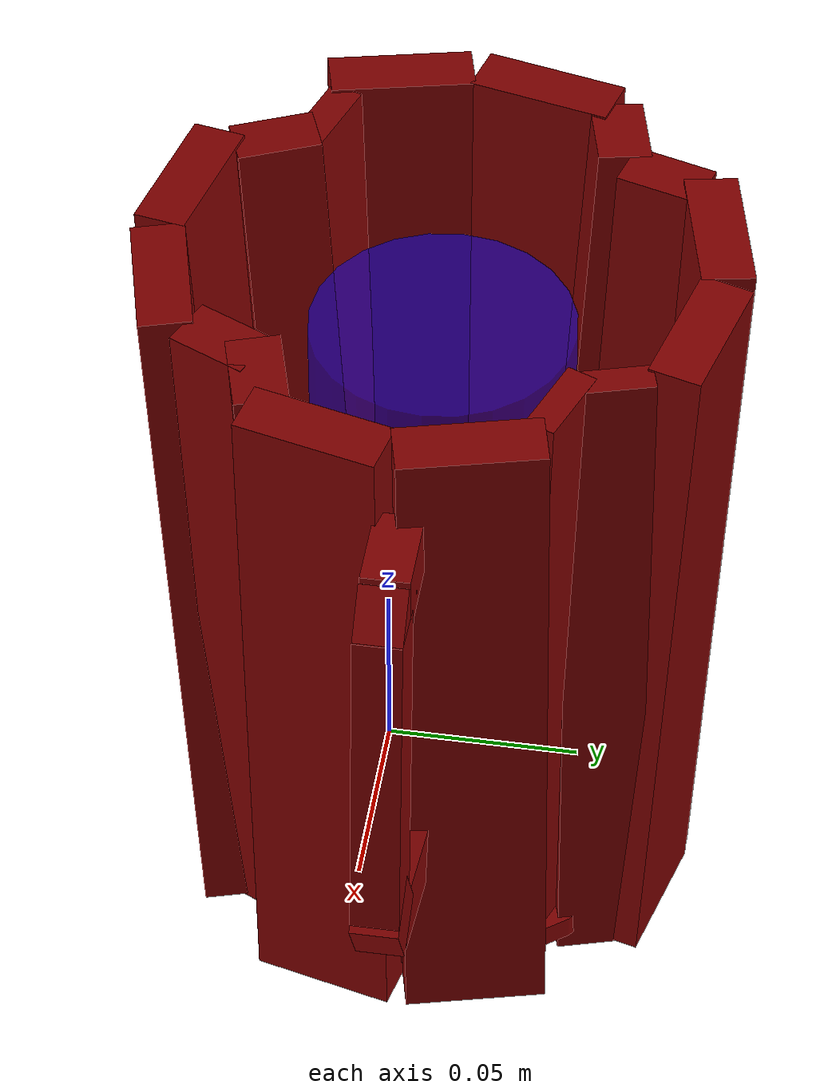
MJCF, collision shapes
<mujoco model="model">
  <option timestep="0.002" gravity="0.0 0.0 -9.81"/>
  <compiler angle="radian"/>
  <asset>
    <mesh file="visuals/blade.obj" name="blade_vis"/>
    <mesh file="visuals/pitcher.obj" name="pitcher_vis"/>
    <mesh file="visuals/pitcher_main.obj" name="pitcher_main_vis"/>
    <texture file="visuals/T_BC001.png" name="pitcher_material" type="2d"/>
    <material name="pitcher_material" rgba="1 1 1 1.0" texture="pitcher_material" shininess="0.5" specular="0.33333333333333337"/>
    <texture file="visuals/T_BC001.png" name="blade_material" type="2d"/>
    <material name="blade_material" rgba="1 1 1 1.0" texture="blade_material" shininess="0.5" specular="0.33333333333333337"/>
    <material name="pitcher_main_material" rgba="0.32120847702026367 0.32120847702026367 0.32120847702026367 0.699999988079071" shininess="0.5" specular="0.33333333333333337"/>
  </asset>
  <default>
    <default class="visual">
      <geom conaffinity="0" contype="0" group="1" type="mesh"/>
    </default>
    <default class="collision">
      <geom group="0" rgba="0.5 0 0 0.5" density="1.0" solref="0.004 1" solimp="0.998 0.998 0.001"/>
    </default>
    <default class="spawn">
      <geom group="0" rgba="1 1 1 0.5" contype="0" conaffinity="0"/>
      <site group="0" rgba="1 1 1 0.5"/>
    </default>
    <default class="region">
      <geom group="1" conaffinity="0" contype="0" rgba="0 1 0 0" mass="0"/>
    </default>
  </default>
  <worldbody>
    <body>
      <body name="object">
        <body name="pitcher">
          <geom mesh="pitcher_vis" type="mesh" solimp="0.998 0.998 0.001" solref="0.001 1" friction="0.95 0.3 0.1" class="visual" material="pitcher_material"/>
          <geom class="collision" type="box" pos="0.06702685 0.01176525 0.01491736" size="0.016262676566839218 0.006255174987018108 0.00810184981673956" quat="0.9880656599998474 9.18393884873699e-16 -0.15403316915035248 -2.0695718916385886e-08" name="pitcher_handle_3"/>
          <geom class="collision" type="box" pos="0.08345240 0.01176526 0.07628109" size="0.046001095324754715 0.006255174987018108 0.008101828396320343" quat="0.6722349524497986 -0.0 -0.7403379082679749 -0.0" name="pitcher_handle_1"/>
          <geom class="collision" type="box" pos="0.08549953 0.01176527 0.02507146" size="0.010042424313724041 0.006255174987018108 0.008101828396320343" quat="0.5120910406112671 -2.831900499148353e-14 0.8589311838150024 1.1540498690010281e-07" name="pitcher_handle_2"/>
          <geom class="collision" type="box" pos="0.07592823 0.01176525 0.12210338" size="0.007123907096683979 0.006255174987018108 0.008101827464997768" quat="0.924427330493927 4.577533759485795e-15 0.38135823607444763 5.1238849607671e-08" name="pitcher_handle_4"/>
          <geom class="collision" type="box" pos="0.06323670 0.01176525 0.12484078" size="0.011389952152967453 0.00625518849119544 0.008101827464997768" quat="1.0 0.0 0.0 0.0" name="pitcher_handle_0"/>
          <geom type="cylinder" pos="-0.01913705 0.01130384 -0.04567479" size="0.057082075625658035 0.0033115732949227095" quat="1.0 0.0 0.0 0.0" class="collision"/>
          <geom type="cylinder" pos="-0.01913705 0.01130384 -0.02962197" size="0.03111385926604271 0.0028781581204384565" quat="1.0 0.0 0.0 0.0" class="collision"/>
          <body name="blade">
            <geom mesh="blade_vis" type="mesh" solimp="0.998 0.998 0.001" solref="0.001 1" friction="0.95 0.3 0.1" class="visual" material="blade_material"/>
            <geom type="cylinder" pos="-0.01985569 0.01151934 -0.00260079" size="0.031107977032661438 0.01745898835361004" quat="1.0 0.0 0.0 0.0" class="collision"/>
          </body>
          <body name="pitcher_main">
            <geom class="region" type="cylinder" size="0.03413279727101326 0.054404400289058685" pos="-0.01983289 0.01119020 0.07587546" rgba="0 0 1 0.5" name="reg_int"/>
            <geom mesh="pitcher_main_vis" type="mesh" solimp="0.998 0.998 0.001" solref="0.001 1" friction="0.95 0.3 0.1" class="visual" material="pitcher_main_material"/>
            <geom type="box" pos="-0.06493741 -0.02314594 0.04992246" size="0.010820484720170498 0.004392159171402454 0.10428368300199509" quat="0.15854039788246155 -0.011242268607020378 -0.016341591253876686 0.9871532320976257" class="collision"/>
            <geom type="box" pos="-0.08192925 -0.00992281 0.05005512" size="0.018552463501691818 0.00687137758359313 0.10428374260663986" quat="0.6167187094688416 -0.020293697714805603 -0.015907641500234604 0.7867611646652222" class="collision"/>
            <geom type="box" pos="-0.08192924 0.02797900 0.05005512" size="0.018552463501691818 0.006871377117931843 0.10428369790315628" quat="0.7867610454559326 -0.01590763032436371 -0.020293693989515305 0.6167188882827759" class="collision"/>
            <geom type="box" pos="0.04137836 0.02797901 0.05005512" size="0.018552463501691818 0.00687137758359313 0.10428374260663986" quat="0.6167187094688416 0.020293697714805603 0.015907639637589455 0.7867611646652222" class="collision"/>
            <geom type="box" pos="0.04137835 -0.00992281 0.05005512" size="0.018552463501691818 0.006871377117931843 0.10428369790315628" quat="0.7867610454559326 0.01590762846171856 0.020293695852160454 0.6167188882827759" class="collision"/>
            <geom type="box" pos="-0.03922635 -0.05097453 0.05005549" size="0.018552469089627266 0.006871378514915705 0.10428374260663986" quat="0.1202380582690239 0.0031013989355415106 -0.02559821680188179 0.9924101829528809" class="collision"/>
            <geom type="box" pos="-0.00132453 -0.05097452 0.05005549" size="0.018552463501691818 0.006871378049254417 0.10428374260663986" quat="0.12023793905973434 0.0031014170963317156 0.02559821866452694 -0.9924101829528809" class="collision"/>
            <geom type="box" pos="-0.03922635 0.07256541 0.05005549" size="0.018552463501691818 0.006871378049254417 0.10428374260663986" quat="0.12023793905973434 -0.0031014170963317156 -0.02559821866452694 -0.9924101829528809" class="collision"/>
            <geom type="box" pos="-0.06717034 0.04331690 0.05011496" size="0.010820485651493073 0.00687137758359313 0.10428371280431747" quat="0.9920954704284668 -0.028778061270713806 -0.023127730935811996 0.11993123590946198" class="collision"/>
            <geom type="box" pos="-0.05269967 0.05761696 0.05008059" size="0.010820483788847923 0.006871378049254417 0.10428372770547867" quat="0.7913755178451538 -0.031811874359846115 -0.004071452189236879 0.6104885339736938" class="collision"/>
            <geom type="box" pos="0.01685444 0.05816995 0.04986232" size="0.0108204809948802 0.0038403382059186697 0.10428372770547867" quat="0.7988603115081787 -0.008304612711071968 0.009356268681585789 -0.6013864874839783" class="collision"/>
            <geom type="box" pos="0.02540475 0.04411304 0.05000789" size="0.010820484720170498 0.003954439423978329 0.10428377240896225" quat="0.98287034034729 -0.01843164674937725 0.011580768041312695 -0.18300819396972656" class="collision"/>
            <geom type="box" pos="0.02259981 -0.02351927 0.05009124" size="0.010820482857525349 0.00687137758359313 0.10428374260663986" quat="0.13653036952018738 -0.02827528864145279 0.020484836772084236 -0.9900203943252563" class="collision"/>
            <geom type="box" pos="0.01514084 -0.03400934 0.05003687" size="0.010820485651493073 0.006871379446238279 0.10428374260663986" quat="0.5283477902412415 -0.008006410673260689 0.024510914459824562 -0.8486363887786865" class="collision"/>
            <geom type="box" pos="-0.05371759 -0.03128948 0.05009218" size="0.010820485651493073 0.006871378514915705 0.10428375005722046" quat="0.5689519047737122 0.0023401062935590744 -0.03543747961521149 0.8216035962104797" class="collision"/>
            <geom type="box" pos="-0.00132453 0.07256541 0.05005549" size="0.018552463501691818 0.006871378049254417 0.10428374260663986" quat="0.12023793905973434 -0.0031014170963317156 0.02559821866452694 0.9924101829528809" class="collision"/>
          </body>
        </body>
        <geom class="region" name="reg_bbox" density="0" type="box" pos="0.0005730000000000041 0.011104000000000003 0.0472715" size="0.094887 0.0747905 0.10733000000000001"/>
      </body>
      <site rgba="0 1 0 0" size="0.005" pos="-0.01952017 0.01263586 0.15305062" name="anchor_site"/>
    </body>
  </worldbody>
</mujoco>
